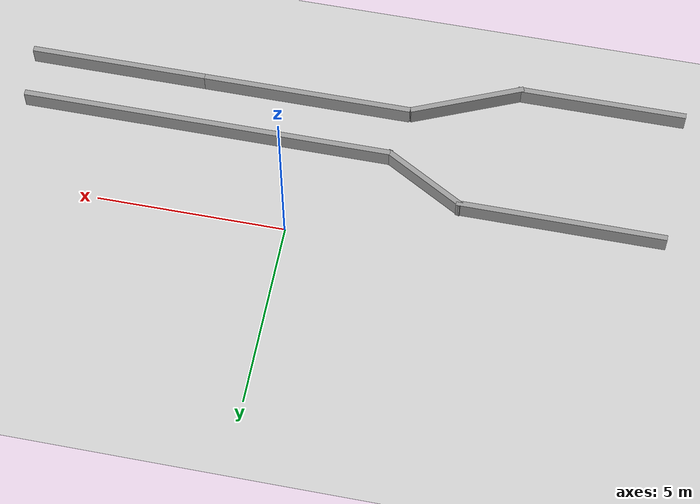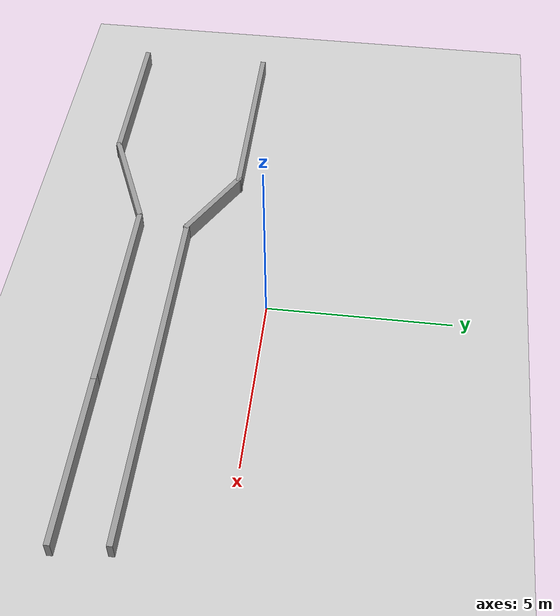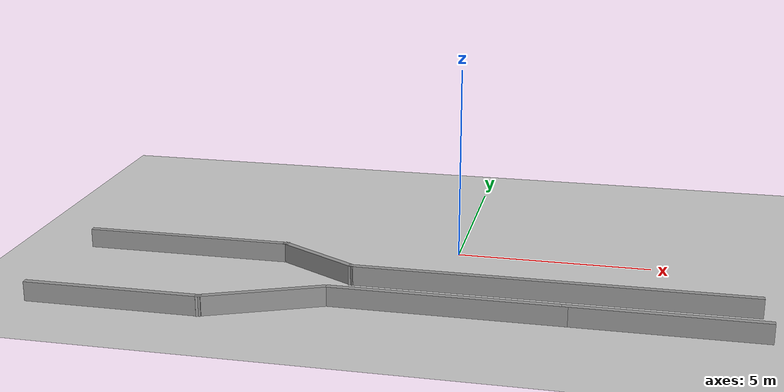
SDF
<sdf version="1.6">
 <world name="default">
  <light name="sun" type="directional">
   <pose>0 0 10 0 -0 0</pose>
   <diffuse>0.8 0.8 0.8 1</diffuse>
   <specular>0.1 0.1 0.1 1</specular>
   <attenuation>
    <range>1000</range>
    <constant>0.9</constant>
    <linear>0.01</linear>
    <quadratic>0.001</quadratic>
   </attenuation>
   <direction>-0.5 0.5 -1</direction>
  </light>
  <model name="ground_plane">
   <static>1</static>
   <link name="link">
    <collision name="collision">
     <geometry><plane><normal>0 0 1</normal><size>100 100</size></plane></geometry>
     <surface><friction><ode><mu>100</mu><mu2>50</mu2></ode></friction></surface>
    </collision>
    <visual name="visual">
     <cast_shadows>0</cast_shadows>
     <geometry><plane><normal>0 0 1</normal><size>100 100</size></plane></geometry>
     <material>
      <script><uri>file://media/materials/scripts/gazebo.material</uri><name>Gazebo/Grey</name></script>
     </material>
    </visual>
   </link>
  </model>
  <gravity>0 0 -9.8</gravity>
  <magnetic_field>6e-06 2.3e-05 -4.2e-05</magnetic_field>
  <atmosphere type="adiabatic"/>
  <physics name="default_physics" default="0" type="ode">
   <max_step_size>0.01</max_step_size>
   <real_time_factor>1</real_time_factor>
   <real_time_update_rate>1000</real_time_update_rate>
  </physics>
  <scene><ambient>0.4 0.4 0.4 1</ambient><background>0.7 0.7 0.7 1</background><shadows>1</shadows></scene>
  <spherical_coordinates>
   <surface_model>EARTH_WGS84</surface_model>
   <latitude_deg>0</latitude_deg>
   <longitude_deg>0</longitude_deg>
   <elevation>0</elevation>
   <heading_deg>0</heading_deg>
  </spherical_coordinates>
  <model name="TwoWall">
   <pose>-1.01952 -3.25889 0 0 -0 0</pose>
   <link name="Wall_11">
    <collision name="Wall_11_Collision">
     <geometry><box><size>3.11329 0.15 0.5</size></box></geometry>
     <pose>0 0 0.25 0 -0 0</pose>
    </collision>
    <visual name="Wall_11_Visual">
     <pose>0 0 0.25 0 -0 0</pose>
     <geometry><box><size>3.11329 0.15 0.5</size></box></geometry>
     <material>
      <script><uri>file://media/materials/scripts/gazebo.material</uri><name>Gazebo/Grey</name></script>
      <ambient>1 1 1 1</ambient>
     </material>
     <meta><layer>0</layer></meta>
    </visual>
    <pose>-2.99945 -1.30991 0 0 -0 -2.73531</pose>
   </link>
   <link name="Wall_15">
    <collision name="Wall_15_Collision">
     <geometry><box><size>5.75 0.15 0.5</size></box></geometry>
     <pose>0 0 0.25 0 -0 0</pose>
    </collision>
    <visual name="Wall_15_Visual">
     <pose>0 0 0.25 0 -0 0</pose>
     <geometry><box><size>5.75 0.15 0.5</size></box></geometry>
     <material>
      <script><uri>file://media/materials/scripts/gazebo.material</uri><name>Gazebo/Grey</name></script>
      <ambient>1 1 1 1</ambient>
     </material>
     <meta><layer>0</layer></meta>
    </visual>
    <pose>1.31049 -0.693957 0 0 -0 3.14159</pose>
   </link>
   <link name="Wall_17">
    <collision name="Wall_17_Collision">
     <geometry><box><size>4.75 0.15 0.5</size></box></geometry>
     <pose>0 0 0.25 0 -0 0</pose>
    </collision>
    <visual name="Wall_17_Visual">
     <pose>0 0 0.25 0 -0 0</pose>
     <geometry><box><size>4.75 0.15 0.5</size></box></geometry>
     <material>
      <script><uri>file://media/materials/scripts/gazebo.material</uri><name>Gazebo/Grey</name></script>
      <ambient>1 1 1 1</ambient>
     </material>
     <meta><layer>0</layer></meta>
    </visual>
    <pose>6.41049 -0.693957 0 0 -0 0</pose>
   </link>
   <link name="Wall_5">
    <collision name="Wall_5_Collision">
     <geometry><box><size>5.5 0.15 0.5</size></box></geometry>
     <pose>0 0 0.25 0 -0 0</pose>
    </collision>
    <visual name="Wall_5_Visual">
     <pose>0 0 0.25 0 -0 0</pose>
     <geometry><box><size>5.5 0.15 0.5</size></box></geometry>
     <material>
      <script><uri>file://media/materials/scripts/gazebo.material</uri><name>Gazebo/Grey</name></script>
      <ambient>1 1 1 1</ambient>
     </material>
     <meta><layer>0</layer></meta>
    </visual>
    <pose>-5.98986 1.89153 0 0 -0 0</pose>
   </link>
   <link name="Wall_6">
    <collision name="Wall_6_Collision">
     <geometry><box><size>2.5 0.15 0.5</size></box></geometry>
     <pose>0 0 0.25 0 -0 0</pose>
    </collision>
    <visual name="Wall_6_Visual">
     <pose>0 0 0.25 0 -0 0</pose>
     <geometry><box><size>2.5 0.15 0.5</size></box></geometry>
     <material>
      <script><uri>file://media/materials/scripts/gazebo.material</uri><name>Gazebo/Grey</name></script>
      <ambient>1 1 1 1</ambient>
     </material>
     <meta><layer>0</layer></meta>
    </visual>
    <pose>-2.29728 1.30403 0 0 -0 -0.523599</pose>
   </link>
   <link name="Wall_7">
    <collision name="Wall_7_Collision">
     <geometry><box><size>10 0.15 0.5</size></box></geometry>
     <pose>0 0 0.25 0 -0 0</pose>
    </collision>
    <visual name="Wall_7_Visual">
     <pose>0 0 0.25 0 -0 0</pose>
     <geometry><box><size>10 0.15 0.5</size></box></geometry>
     <material>
      <script><uri>file://media/materials/scripts/gazebo.material</uri><name>Gazebo/Grey</name></script>
      <ambient>1 1 1 1</ambient>
     </material>
     <meta><layer>0</layer></meta>
    </visual>
    <pose>3.6453 0.71653 0 0 -0 0</pose>
   </link>
   <link name="Wall_9">
    <collision name="Wall_9_Collision">
     <geometry><box><size>4.5 0.15 0.5</size></box></geometry>
     <pose>0 0 0.25 0 -0 0</pose>
    </collision>
    <visual name="Wall_9_Visual">
     <pose>0 0 0.25 0 -0 0</pose>
     <geometry><box><size>4.5 0.15 0.5</size></box></geometry>
     <material>
      <script><uri>file://media/materials/scripts/gazebo.material</uri><name>Gazebo/Grey</name></script>
      <ambient>1 1 1 1</ambient>
     </material>
     <meta><layer>0</layer></meta>
    </visual>
    <pose>-6.53549 -1.89545 0 0 -0 0</pose>
   </link>
   <static>1</static>
  </model>
 </world>
</sdf>
